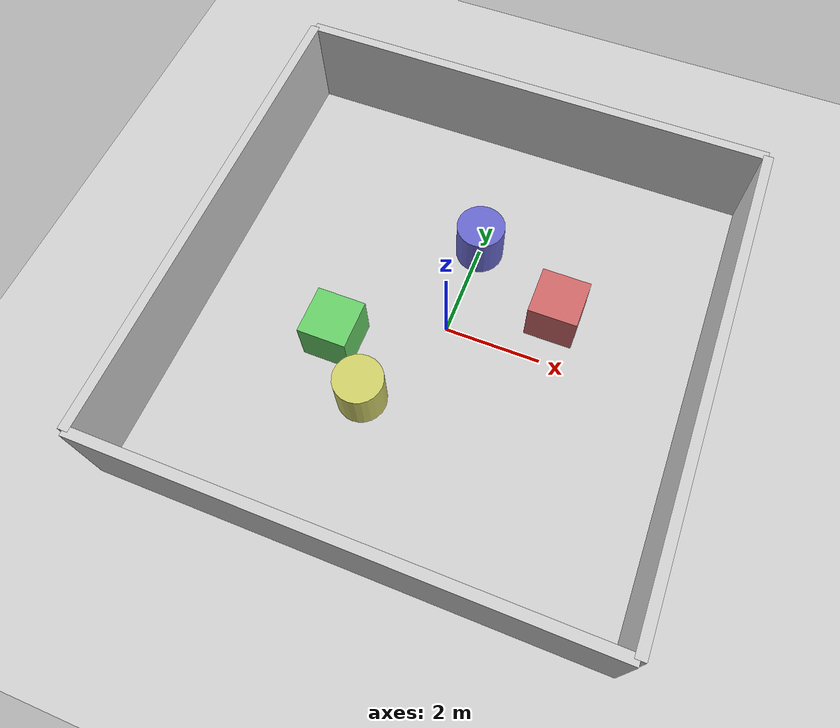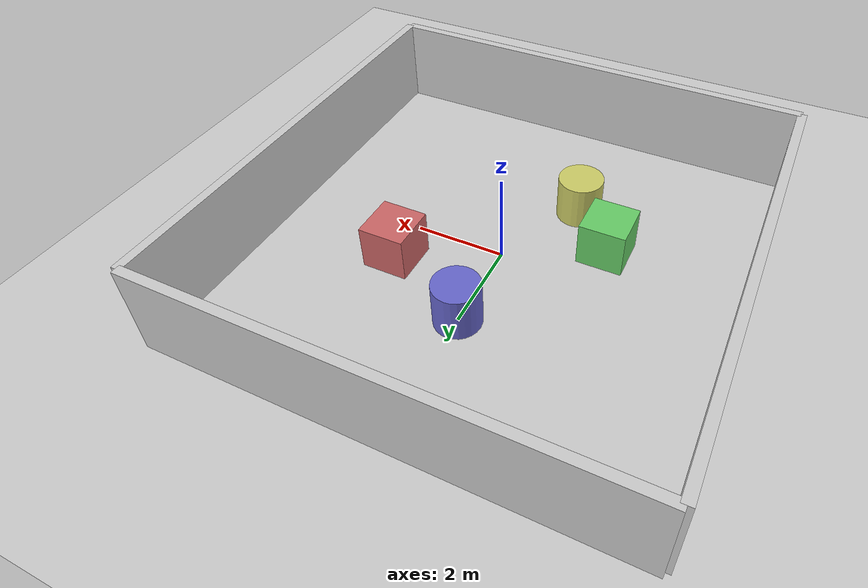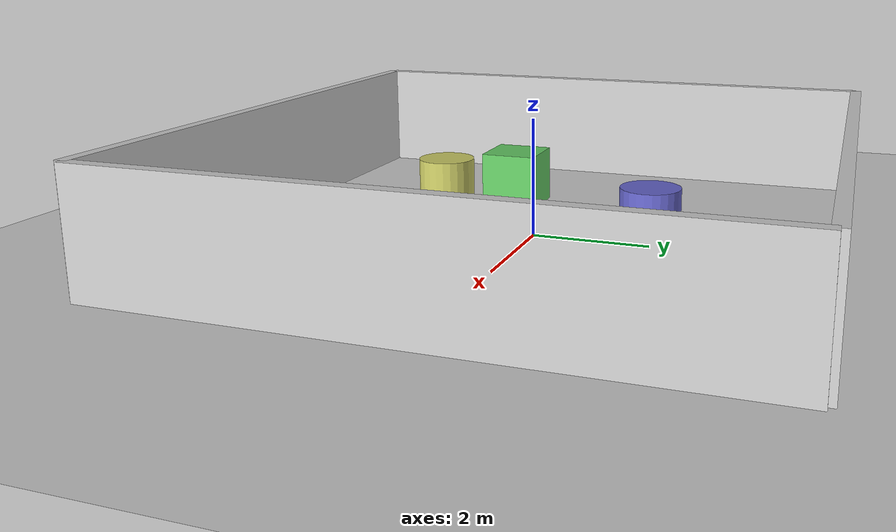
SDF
<?xml version="1.0" ?>
<sdf version="1.6">
  <world name="simple_warehouse">

    <!-- A global light source -->
    <include>
      <uri>model://sun</uri>
    </include>

    <!-- Ground plane -->
    <include>
      <uri>model://ground_plane</uri>
    </include>

    <!-- Warehouse walls -->
    <model name="wall_1">
      <pose>5 0 1 0 0 0</pose>
      <static>true</static>
      <link name="link">
        <collision name="collision">
          <geometry>
            <box>
              <size>0.2 10 2</size>
            </box>
          </geometry>
        </collision>
        <visual name="visual">
          <geometry>
            <box>
              <size>0.2 10 2</size>
            </box>
          </geometry>
          <material>
            <ambient>0.8 0.8 0.8 1</ambient>
            <diffuse>0.8 0.8 0.8 1</diffuse>
          </material>
        </visual>
      </link>
    </model>

    <model name="wall_2">
      <pose>-5 0 1 0 0 0</pose>
      <static>true</static>
      <link name="link">
        <collision name="collision">
          <geometry>
            <box>
              <size>0.2 10 2</size>
            </box>
          </geometry>
        </collision>
        <visual name="visual">
          <geometry>
            <box>
              <size>0.2 10 2</size>
            </box>
          </geometry>
          <material>
            <ambient>0.8 0.8 0.8 1</ambient>
            <diffuse>0.8 0.8 0.8 1</diffuse>
          </material>
        </visual>
      </link>
    </model>

    <model name="wall_3">
      <pose>0 5 1 0 0 1.57</pose>
      <static>true</static>
      <link name="link">
        <collision name="collision">
          <geometry>
            <box>
              <size>0.2 10 2</size>
            </box>
          </geometry>
        </collision>
        <visual name="visual">
          <geometry>
            <box>
              <size>0.2 10 2</size>
            </box>
          </geometry>
          <material>
            <ambient>0.8 0.8 0.8 1</ambient>
            <diffuse>0.8 0.8 0.8 1</diffuse>
          </material>
        </visual>
      </link>
    </model>

    <model name="wall_4">
      <pose>0 -5 1 0 0 1.57</pose>
      <static>true</static>
      <link name="link">
        <collision name="collision">
          <geometry>
            <box>
              <size>0.2 10 2</size>
            </box>
          </geometry>
        </collision>
        <visual name="visual">
          <geometry>
            <box>
              <size>0.2 10 2</size>
            </box>
          </geometry>
          <material>
            <ambient>0.8 0.8 0.8 1</ambient>
            <diffuse>0.8 0.8 0.8 1</diffuse>
          </material>
        </visual>
      </link>
    </model>

    <!-- Obstacles -->
    <model name="box_1">
      <pose>2 1 0.5 0 0 0</pose>
      <static>true</static>
      <link name="link">
        <collision name="collision">
          <geometry>
            <box>
              <size>1 1 1</size>
            </box>
          </geometry>
        </collision>
        <visual name="visual">
          <geometry>
            <box>
              <size>1 1 1</size>
            </box>
          </geometry>
          <material>
            <ambient>0.8 0.4 0.4 1</ambient>
            <diffuse>0.8 0.4 0.4 1</diffuse>
          </material>
        </visual>
      </link>
    </model>

    <model name="box_2">
      <pose>-2 -1 0.5 0 0 0</pose>
      <static>true</static>
      <link name="link">
        <collision name="collision">
          <geometry>
            <box>
              <size>1 1 1</size>
            </box>
          </geometry>
        </collision>
        <visual name="visual">
          <geometry>
            <box>
              <size>1 1 1</size>
            </box>
          </geometry>
          <material>
            <ambient>0.4 0.8 0.4 1</ambient>
            <diffuse>0.4 0.8 0.4 1</diffuse>
          </material>
        </visual>
      </link>
    </model>

    <model name="barrel_1">
      <pose>0 2 0.5 0 0 0</pose>
      <static>true</static>
      <link name="link">
        <collision name="collision">
          <geometry>
            <cylinder>
              <radius>0.5</radius>
              <length>1</length>
            </cylinder>
          </geometry>
        </collision>
        <visual name="visual">
          <geometry>
            <cylinder>
              <radius>0.5</radius>
              <length>1</length>
            </cylinder>
          </geometry>
          <material>
            <ambient>0.4 0.4 0.8 1</ambient>
            <diffuse>0.4 0.4 0.8 1</diffuse>
          </material>
        </visual>
      </link>
    </model>

    <model name="barrel_2">
      <pose>-1 -2 0.5 0 0 0</pose>
      <static>true</static>
      <link name="link">
        <collision name="collision">
          <geometry>
            <cylinder>
              <radius>0.5</radius>
              <length>1</length>
            </cylinder>
          </geometry>
        </collision>
        <visual name="visual">
          <geometry>
            <cylinder>
              <radius>0.5</radius>
              <length>1</length>
            </cylinder>
          </geometry>
          <material>
            <ambient>0.8 0.8 0.4 1</ambient>
            <diffuse>0.8 0.8 0.4 1</diffuse>
          </material>
        </visual>
      </link>
    </model>

  </world>
</sdf>
